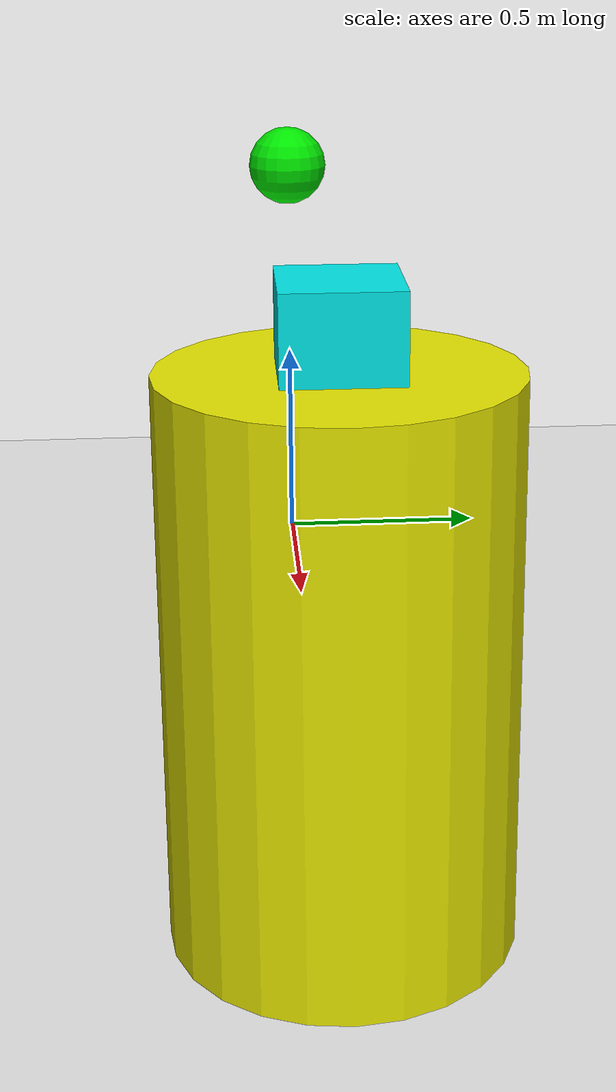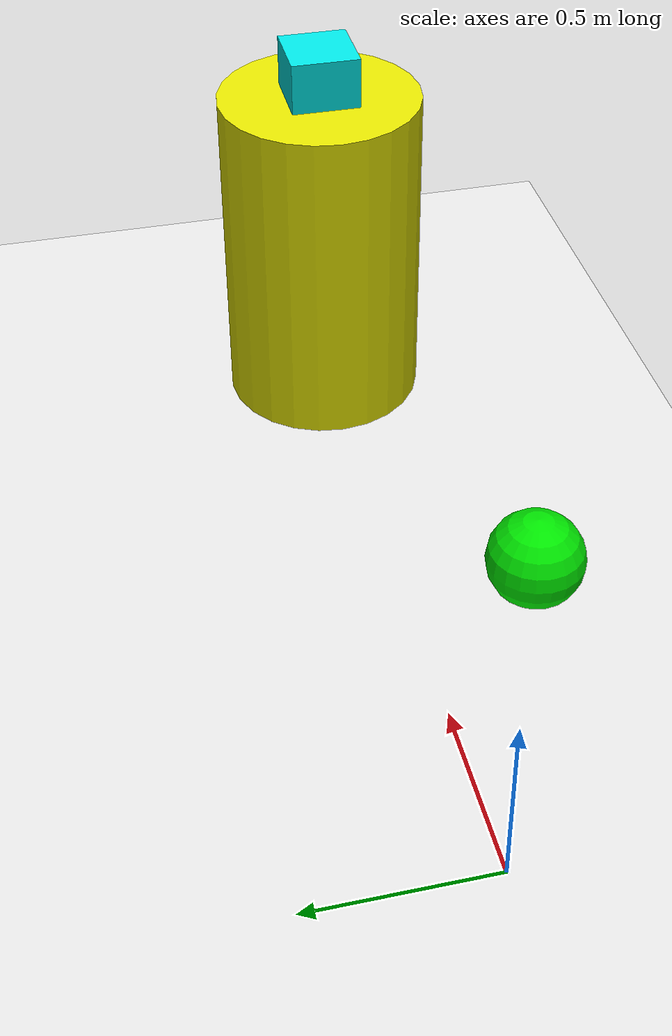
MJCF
<mujoco>
	<worldbody>
        <light diffuse=".5 .5 .5" pos="0 0 3" dir="0 0 -1"/>
		<geom type="plane" size="5 5 0.1" rgba=".9 0.9 0.9 1"/>
		<body pos="0 0 1">
			<joint type="free"/>
			<geom type="sphere" size=".1 " rgba="0 .9 0 1" mass="1" />
		</body>
        <body pos="2 0 0.5">
			<joint type="free"/>
			<geom type="cylinder" size=".3 0.5" rgba="0.9 .9 0 1" mass="10" />
		</body>
        <body pos="2 0 1.05">
			<joint type="free"/>
			<geom type="box" size=".1 .1 .1" rgba="0 .9 0.9 1" mass="1" />
		</body>
	</worldbody>
</mujoco>
